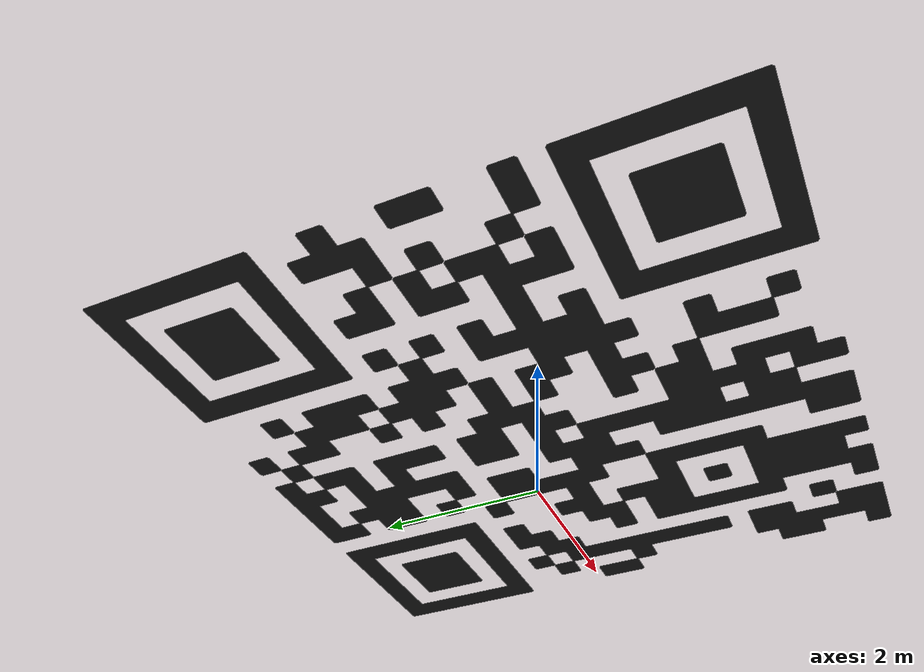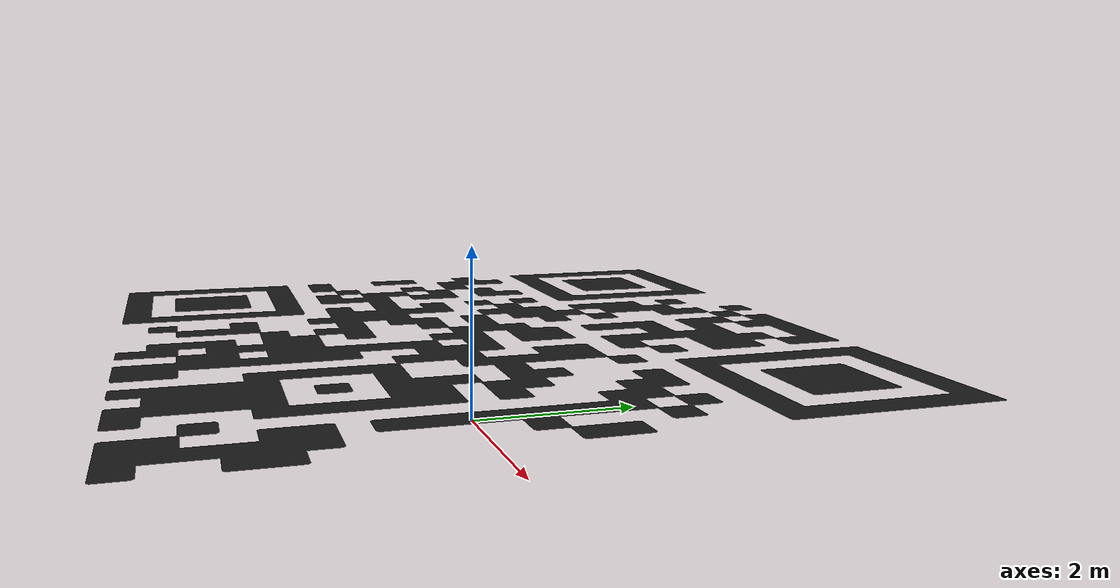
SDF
<?xml version="1.0" ?>
<sdf version="1.6">
  <model name="istikbalgoklerdedir_q">
    <pose>0 0 1 0 0 0</pose>
    <static>true</static>
    <link name="link">
      <visual name="visual">
        <geometry>
          <mesh>
            <scale>10 10 0.000001</scale>
            <uri>model://QR_17/meshes/istikbalgoklerdedir_q.stl</uri>
          </mesh>
        </geometry>
        <material>
          <script>
            <name>Gazebo/Black</name>
          </script>
        </material>
      </visual>
    </link>
  </model>
</sdf>
